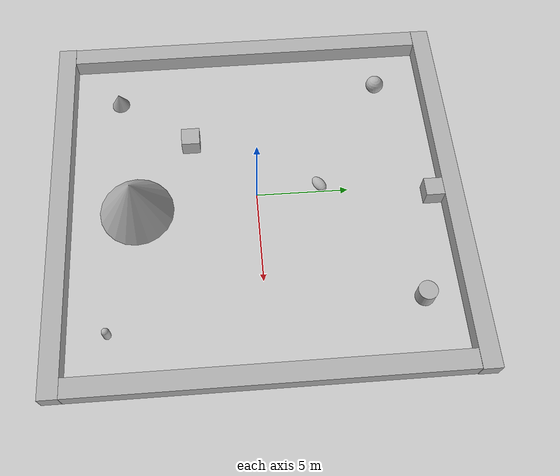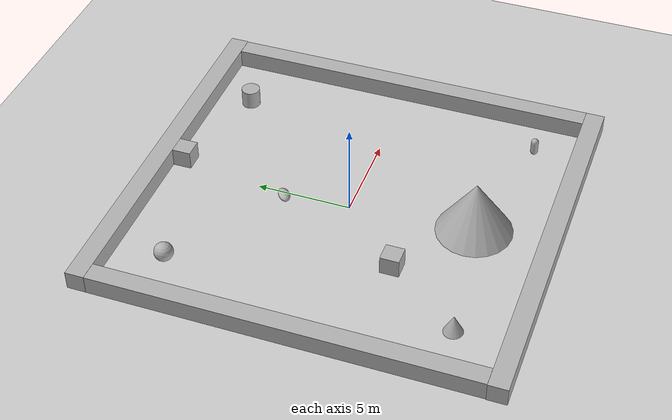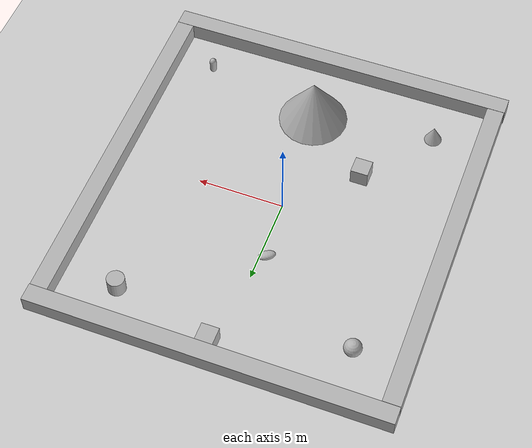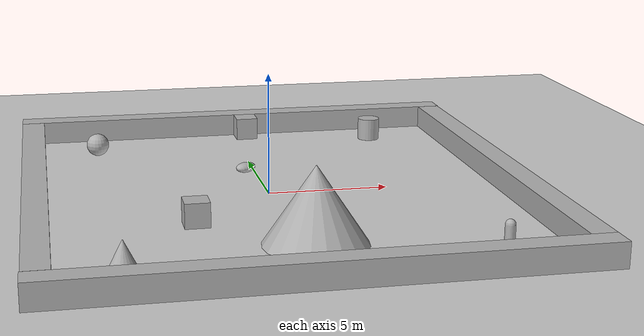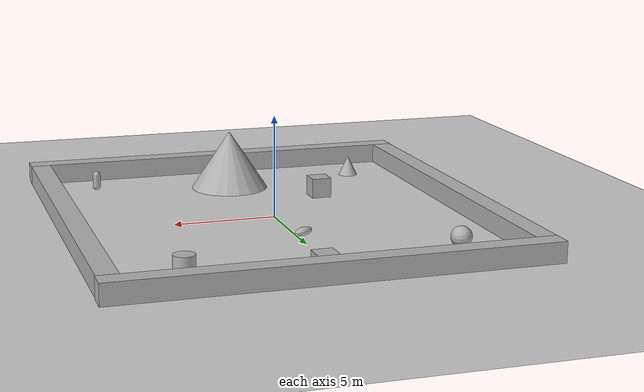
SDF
<sdf version="1.10">
 <world name="empty">
  <physics name="1ms" type="ignored">
   <max_step_size>0.001</max_step_size>
   <real_time_factor>1</real_time_factor>
   <real_time_update_rate>1000</real_time_update_rate>
  </physics>
  <plugin name="gz::sim::systems::Physics" filename="gz-sim-physics-system"/>
  <plugin name="gz::sim::systems::UserCommands" filename="gz-sim-user-commands-system"/>
  <plugin name="gz::sim::systems::SceneBroadcaster" filename="gz-sim-scene-broadcaster-system"/>
  <plugin name="gz::sim::systems::Contact" filename="gz-sim-contact-system"/>
  <gravity>0 0 -9.8000000000000007</gravity>
  <magnetic_field>5.5644999999999998e-06 2.2875799999999999e-05 -4.2388400000000002e-05</magnetic_field>
  <atmosphere type="adiabatic"/>
  <scene>
   <ambient>0.400000006 0.400000006 0.400000006 1</ambient>
   <background>0.699999988 0.699999988 0.699999988 1</background>
   <shadows>true</shadows>
  </scene>
  <model name="ground_plane">
   <static>true</static>
   <link name="link">
    <collision name="collision">
     <geometry><plane><normal>0 0 1</normal><size>100 100</size></plane></geometry>
    </collision>
    <visual name="visual">
     <geometry><plane><normal>0 0 1</normal><size>100 100</size></plane></geometry>
     <material>
      <ambient>0.800000012 0.800000012 0.800000012 1</ambient>
      <diffuse>0.800000012 0.800000012 0.800000012 1</diffuse>
      <specular>0.800000012 0.800000012 0.800000012 1</specular>
     </material>
    </visual>
    <inertial>
     <mass>1</mass>
     <inertia><ixx>1</ixx><ixy>0</ixy><ixz>0</ixz><iyy>1</iyy><iyz>0</iyz><izz>1</izz></inertia>
    </inertial>
   </link>
  </model>
  <model name="box">
   <pose>-9.4594259993357479 -0.0053163772563710847 0.4999985238240463 4.0695340872622505e-09 -1.5627988064326497e-09 -5.447540433571092e-07</pose>
   <link name="box_link">
    <inertial>
     <inertia><ixx>0.16666</ixx><ixy>0</ixy><ixz>0</ixz><iyy>0.16666</iyy><iyz>0</iyz><izz>0.16666</izz></inertia>
     <mass>1</mass>
    </inertial>
    <collision name="box_collision"><geometry><box><size>1 20 1</size></box></geometry></collision>
    <visual name="box_visual">
     <geometry><box><size>1 20 1</size></box></geometry>
     <material>
      <ambient>0.300000012 0.300000012 0.300000012 1</ambient>
      <diffuse>0.699999988 0.699999988 0.699999988 1</diffuse>
      <specular>1 1 1 1</specular>
     </material>
    </visual>
   </link>
   <static>false</static>
  </model>
  <model name="box_1">
   <pose>10.010098457361368 -0.024525592237138016 0.49999898388861524 -2.09479598487766e-09 2.7544486696949676e-11 -3.4293713487470436e-09</pose>
   <link name="box_link">
    <inertial>
     <inertia><ixx>0.16666</ixx><ixy>0</ixy><ixz>0</ixz><iyy>0.16666</iyy><iyz>0</iyz><izz>0.16666</izz></inertia>
     <mass>1</mass>
    </inertial>
    <collision name="box_collision"><geometry><box><size>1 20 1</size></box></geometry></collision>
    <visual name="box_visual">
     <geometry><box><size>1 20 1</size></box></geometry>
     <material>
      <ambient>0.300000012 0.300000012 0.300000012 1</ambient>
      <diffuse>0.699999988 0.699999988 0.699999988 1</diffuse>
      <specular>1 1 1 1</specular>
     </material>
    </visual>
   </link>
   <static>false</static>
  </model>
  <model name="box_0">
   <pose>0.26008102139664108 -10.518118592279265 0.49999844939441035 2.1634120165367241e-13 -1.0894862418998066e-14 -0.00081044626992132784</pose>
   <link name="box_link">
    <inertial>
     <inertia><ixx>0.16666</ixx><ixy>0</ixy><ixz>0</ixz><iyy>0.16666</iyy><iyz>0</iyz><izz>0.16666</izz></inertia>
     <mass>1</mass>
    </inertial>
    <collision name="box_collision"><geometry><box><size>20.5 1 1</size></box></geometry></collision>
    <visual name="box_visual">
     <geometry><box><size>20.5 1 1</size></box></geometry>
     <material>
      <ambient>0.300000012 0.300000012 0.300000012 1</ambient>
      <diffuse>0.699999988 0.699999988 0.699999988 1</diffuse>
      <specular>1 1 1 1</specular>
     </material>
    </visual>
   </link>
   <static>false</static>
  </model>
  <model name="box_0_1">
   <pose>0.29227738430911226 10.490686040687459 0.49999844939440996 -6.6912725729625319e-10 -1.0950227686831867e-14 -0.00090462892227734292</pose>
   <link name="box_link">
    <inertial>
     <inertia><ixx>0.16666</ixx><ixy>0</ixy><ixz>0</ixz><iyy>0.16666</iyy><iyz>0</iyz><izz>0.16666</izz></inertia>
     <mass>1</mass>
    </inertial>
    <collision name="box_collision"><geometry><box><size>20.5 1 1</size></box></geometry></collision>
    <visual name="box_visual">
     <geometry><box><size>20.5 1 1</size></box></geometry>
     <material>
      <ambient>0.300000012 0.300000012 0.300000012 1</ambient>
      <diffuse>0.699999988 0.699999988 0.699999988 1</diffuse>
      <specular>1 1 1 1</specular>
     </material>
    </visual>
   </link>
   <static>false</static>
  </model>
  <model name="sphere">
   <pose>-6.5892213179504981 7.3925532917590182 0.499999999902001 0 0 0</pose>
   <link name="sphere_link">
    <inertial>
     <inertia>
      <ixx>0.10000000000000001</ixx>
      <ixy>0</ixy>
      <ixz>0</ixz>
      <iyy>0.10000000000000001</iyy>
      <iyz>0</iyz>
      <izz>0.10000000000000001</izz>
     </inertia>
     <mass>1</mass>
    </inertial>
    <collision name="sphere_collision"><geometry><sphere><radius>0.5</radius></sphere></geometry></collision>
    <visual name="sphere_visual">
     <geometry><sphere><radius>0.5</radius></sphere></geometry>
     <material>
      <ambient>0.300000012 0.300000012 0.300000012 1</ambient>
      <diffuse>0.699999988 0.699999988 0.699999988 1</diffuse>
      <specular>1 1 1 1</specular>
     </material>
    </visual>
   </link>
   <static>false</static>
  </model>
  <model name="cone">
   <pose>-6.5174929754781328 -7.478343035799643 0.49999999993296756 5.2544591086068952e-17 -7.7132841037290368e-10 -3.4184866375544543e-23</pose>
   <link name="cone_link">
    <inertial>
     <inertia>
      <ixx>0.074999999999999997</ixx>
      <ixy>0</ixy>
      <ixz>0</ixz>
      <iyy>0.074999999999999997</iyy>
      <iyz>0</iyz>
      <izz>0.074999999999999997</izz>
     </inertia>
     <mass>1</mass>
    </inertial>
    <collision name="cone_collision">
     <geometry><cone><radius>0.5</radius><length>1</length></cone></geometry>
    </collision>
    <visual name="cone_visual">
     <geometry><cone><radius>0.5</radius><length>1</length></cone></geometry>
     <material>
      <ambient>0.300000012 0.300000012 0.300000012 1</ambient>
      <diffuse>0.699999988 0.699999988 0.699999988 1</diffuse>
      <specular>1 1 1 1</specular>
     </material>
    </visual>
   </link>
   <static>false</static>
  </model>
  <model name="cylinder">
   <pose>6.4271793365478516 8.1085596084594727 0.49999942638036005 5.4601880048465833e-20 3.1919792858961256e-21 -9.8012861475681596e-21</pose>
   <link name="cylinder_link">
    <inertial>
     <inertia>
      <ixx>0.14580000000000001</ixx>
      <ixy>0</ixy>
      <ixz>0</ixz>
      <iyy>0.14580000000000001</iyy>
      <iyz>0</iyz>
      <izz>0.125</izz>
     </inertia>
     <mass>1</mass>
    </inertial>
    <collision name="cylinder_collision">
     <geometry><cylinder><radius>0.5</radius><length>1</length></cylinder></geometry>
    </collision>
    <visual name="cylinder_visual">
     <geometry><cylinder><radius>0.5</radius><length>1</length></cylinder></geometry>
     <material>
      <ambient>0.300000012 0.300000012 0.300000012 1</ambient>
      <diffuse>0.699999988 0.699999988 0.699999988 1</diffuse>
      <specular>1 1 1 1</specular>
     </material>
    </visual>
   </link>
   <static>false</static>
  </model>
  <model name="capsule">
   <pose>7.3778877525841295 -7.9319856891186049 0.499999999902001 0 0 0</pose>
   <link name="capsule_link">
    <inertial>
     <inertia>
      <ixx>0.074153999999999998</ixx>
      <ixy>0</ixy>
      <ixz>0</ixz>
      <iyy>0.074153999999999998</iyy>
      <iyz>0</iyz>
      <izz>0.018769000000000001</izz>
     </inertia>
     <mass>1</mass>
    </inertial>
    <collision name="capsule_collision">
     <geometry>
      <capsule><radius>0.20000000000000001</radius><length>0.59999999999999998</length></capsule>
     </geometry>
    </collision>
    <visual name="capsule_visual">
     <geometry>
      <capsule><radius>0.20000000000000001</radius><length>0.59999999999999998</length></capsule>
     </geometry>
     <material>
      <ambient>0.300000012 0.300000012 0.300000012 1</ambient>
      <diffuse>0.699999988 0.699999988 0.699999988 1</diffuse>
      <specular>1 1 1 1</specular>
     </material>
    </visual>
   </link>
   <static>false</static>
  </model>
  <model name="ellipsoid">
   <pose>-0.37535446263093064 3.4595779280796166 0.18666843612397943 1.5707963027060894 -1.3774877890188371 -0.97946978775295745</pose>
   <link name="ellipsoid_link">
    <inertial>
     <inertia>
      <ixx>0.068000000000000005</ixx>
      <ixy>0</ixy>
      <ixz>0</ixz>
      <iyy>0.058000000000000003</iyy>
      <iyz>0</iyz>
      <izz>0.025999999999999999</izz>
     </inertia>
     <mass>1</mass>
    </inertial>
    <collision name="ellipsoid_collision">
     <geometry><ellipsoid><radii>0.20000000000000001 0.29999999999999999 0.5</radii></ellipsoid></geometry>
    </collision>
    <visual name="ellipsoid_visual">
     <geometry><ellipsoid><radii>0.20000000000000001 0.29999999999999999 0.5</radii></ellipsoid></geometry>
     <material>
      <ambient>0.300000012 0.300000012 0.300000012 1</ambient>
      <diffuse>0.699999988 0.699999988 0.699999988 1</diffuse>
      <specular>1 1 1 1</specular>
     </material>
    </visual>
   </link>
   <static>false</static>
  </model>
  <model name="box_2">
   <pose>-3.4584967584220525 -3.4541447679650936 0.49999999990199806 6.2287739151293738e-22 9.3279666454713669e-22 -3.6315533669320137e-22</pose>
   <link name="box_link">
    <inertial>
     <inertia><ixx>0.16666</ixx><ixy>0</ixy><ixz>0</ixz><iyy>0.16666</iyy><iyz>0</iyz><izz>0.16666</izz></inertia>
     <mass>1</mass>
    </inertial>
    <collision name="box_collision"><geometry><box><size>1 1 1</size></box></geometry></collision>
    <visual name="box_visual">
     <geometry><box><size>1 1 1</size></box></geometry>
     <material>
      <ambient>0.300000012 0.300000012 0.300000012 1</ambient>
      <diffuse>0.699999988 0.699999988 0.699999988 1</diffuse>
      <specular>1 1 1 1</specular>
     </material>
    </visual>
   </link>
   <static>false</static>
  </model>
  <model name="cone_0">
   <pose>0.51076106886867578 -6.5196817741972986 1.4999999955609971 6.4665559658036358e-08 -7.4989935400141925e-08 -6.4222928487554069e-09</pose>
   <link name="cone_link">
    <inertial>
     <inertia>
      <ixx>0.074999999999999997</ixx>
      <ixy>0</ixy>
      <ixz>0</ixz>
      <iyy>0.074999999999999997</iyy>
      <iyz>0</iyz>
      <izz>0.074999999999999997</izz>
     </inertia>
     <mass>1</mass>
    </inertial>
    <collision name="cone_collision">
     <geometry><cone><radius>2</radius><length>3</length></cone></geometry>
    </collision>
    <visual name="cone_visual">
     <geometry><cone><radius>2</radius><length>3</length></cone></geometry>
     <material>
      <ambient>0.300000012 0.300000012 0.300000012 1</ambient>
      <diffuse>0.699999988 0.699999988 0.699999988 1</diffuse>
      <specular>1 1 1 1</specular>
     </material>
    </visual>
   </link>
   <static>false</static>
  </model>
  <model name="box_3">
   <pose>0.63402688609410973 9.4899248073493201 0.49999999020363756 1.2609107930597929e-08 -2.5454609022228387e-11 4.5324912323087504e-07</pose>
   <link name="box_link">
    <inertial>
     <inertia><ixx>0.16666</ixx><ixy>0</ixy><ixz>0</ixz><iyy>0.16666</iyy><iyz>0</iyz><izz>0.16666</izz></inertia>
     <mass>1</mass>
    </inertial>
    <collision name="box_collision"><geometry><box><size>1 1 1</size></box></geometry></collision>
    <visual name="box_visual">
     <geometry><box><size>1 1 1</size></box></geometry>
     <material>
      <ambient>0.300000012 0.300000012 0.300000012 1</ambient>
      <diffuse>0.699999988 0.699999988 0.699999988 1</diffuse>
      <specular>1 1 1 1</specular>
     </material>
    </visual>
   </link>
   <static>false</static>
  </model>
  <light name="sun" type="directional">
   <pose>0 0 10 0 0 0</pose>
   <intensity>1</intensity>
   <direction>-0.5 0.10000000000000001 -0.90000000000000002</direction>
   <diffuse>0.800000012 0.800000012 0.800000012 1</diffuse>
   <specular>0.200000003 0.200000003 0.200000003 1</specular>
   <attenuation>
    <range>1000</range>
    <linear>0.01</linear>
    <constant>0.90000000000000002</constant>
    <quadratic>0.001</quadratic>
   </attenuation>
   <spot><inner_angle>0</inner_angle><outer_angle>0</outer_angle><falloff>0</falloff></spot>
  </light>
 </world>
</sdf>
